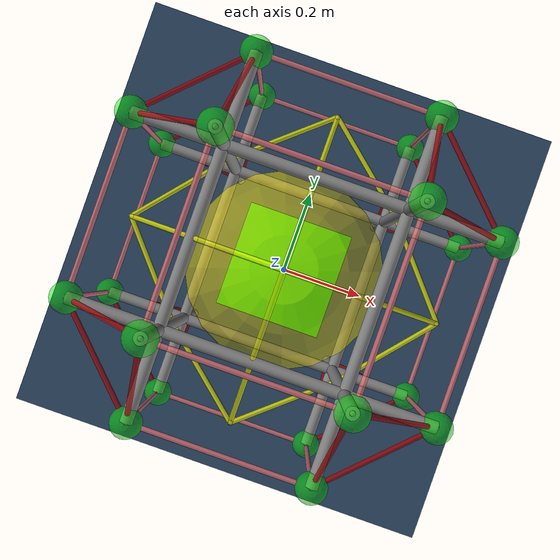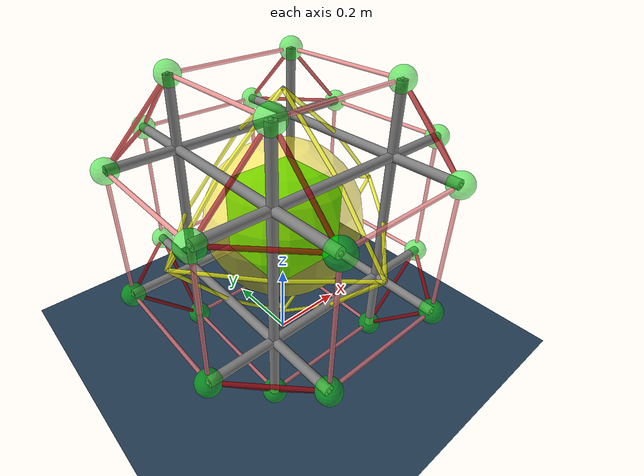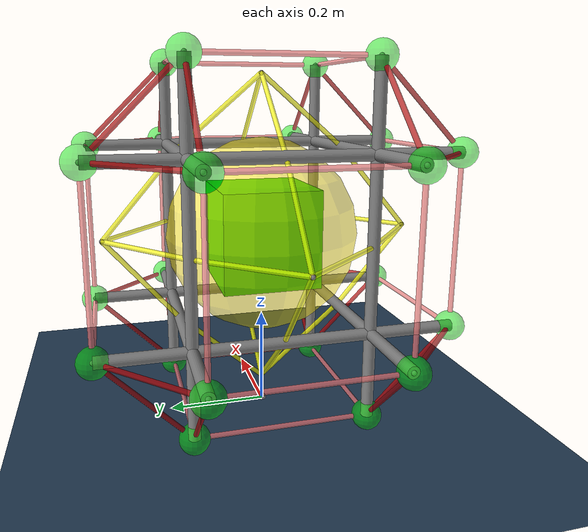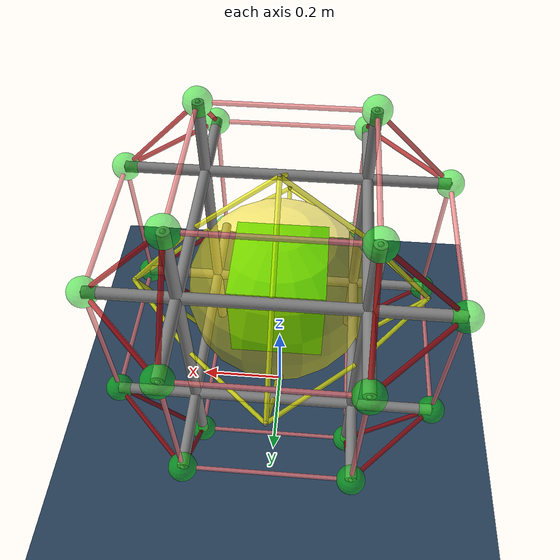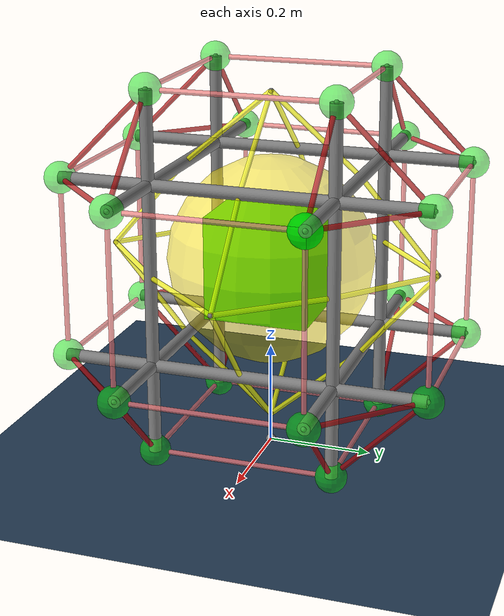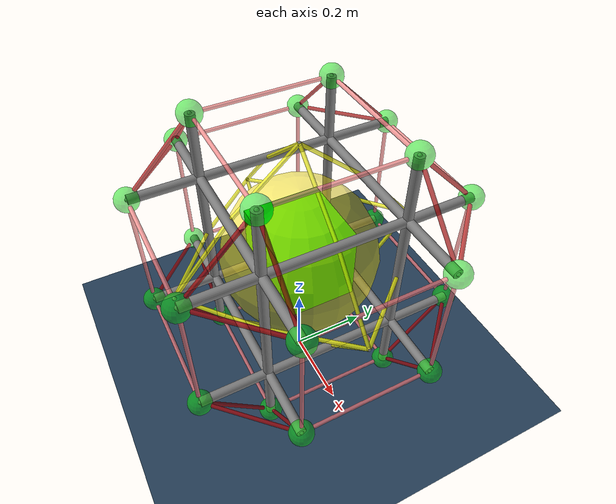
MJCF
<?xml version='1.0' encoding='utf-8'?>
<mujoco model="TT12_environment">
  <compiler autolimits="true" coordinate="local" angle="degree" inertiafromgeom="true" />
  <option timestep="1e-05" gravity="0 0 -10" integrator="Euler">
    <flag override="disable" energy="enable" />
  </option>
  <visual>
    <headlight ambient="0.59999999999999998 0.59999999999999998 0.59999999999999998" diffuse="0.29999999999999999 0.29999999999999999 0.29999999999999999" specular="0.10000000000000001 0.10000000000000001 0.10000000000000001" />
  </visual>
  <default>
    <default class="/">
      <joint type="hinge" damping="0" />
      <geom type="capsule" />
      <site type="sphere" size="0.01" />
      <tendon limited="true" range="0 10" width="0.0050000000000000001" rgba="1 0 0 1" damping="10" />
    </default>
    <default class="tt_model_0/">
      <tendon limited="true" range="0 10" width="0.0050000000000000001" rgba="1 0 0 1" damping="10" />
    </default>
    <default class="tt_model_0/rod0_1/" />
    <default class="tt_model_0/rod2_3/" />
    <default class="tt_model_0/rod4_5/" />
    <default class="tt_model_0/rod6_7/" />
    <default class="tt_model_0/rod8_9/" />
    <default class="tt_model_0/rod10_11/" />
    <default class="tt_model_0/rod12_13/" />
    <default class="tt_model_0/rod14_15/" />
    <default class="tt_model_0/rod16_17/" />
    <default class="tt_model_0/rod18_19/" />
    <default class="tt_model_0/rod20_21/" />
    <default class="tt_model_0/rod22_23/" />
    <default class="tt_model_0/middle_platform/" />
  </default>
  <asset>
    <texture name="skybox" type="skybox" builtin="gradient" rgb1="0.29999999999999999 0.5 0.69999999999999996" rgb2="0 0 0" width="512" height="3072" />
    <texture name="2d" type="2d" builtin="checker" rgb1="0.20000000000000001 0.29999999999999999 0.40000000000000002" rgb2="0.10000000000000001 0.20000000000000001 0.29999999999999999" width="300" height="300" />
    <material name="grid" class="/" texture="2d" texrepeat="5 5" reflectance="0.20000000000000001" />
  </asset>
  <worldbody>
    <geom name="floor" class="/" type="plane" condim="6" priority="1" size="0 0 0.125" material="grid" friction="0.5 0.0050000000000000001 0.0001" solref="-5773.1000000000004 -68.760000000000005" solimp="0.26900000000000002 0.070999999999999994 0.065000000000000002 0.5 2" pos="0 0 0" />
    <light name="light_-2" class="/" pos="-2 -1 3" dir="2 1 -2" />
    <light name="light_2" class="/" pos="2 -1 3" dir="-2 1 -2" />
    <site name="world_site" class="/" pos="0 0 0" />
    <site name="tt_model_0/middle_site_0_1" class="tt_model_0/" rgba="0 0 0 0" pos="0.17499999999999999 0.17499999999999999 0.38" />
    <body pos="0.17499999999999999 0.17499999999999999 0.38" name="tt_model_0/rod0_1/">
      <freejoint name="tt_model_0/rod0_1/" />
      <geom name="tt_model_0/rod0_1/geom0_1" class="tt_model_0/rod0_1/" type="cylinder" size="0.012" mass="0.022499999999999999" fromto="0 0 0.34999999999999998 0 0 -0.34999999999999998" />
      <site name="tt_model_0/rod0_1/node_0" class="tt_model_0/rod0_1/" pos="0 0 0.34999999999999998" />
      <site name="tt_model_0/rod0_1/node_1" class="tt_model_0/rod0_1/" pos="0 0 -0.34999999999999998" />
      <site name="tt_model_0/rod0_1/node_24" class="tt_model_0/rod0_1/" pos="0 0 0" />
      <geom name="tt_model_0/rod0_1/geom_edge_0" class="tt_model_0/rod0_1/" type="sphere" condim="6" size="0.029999999999999999" rgba="0 0.90000000000000002 0 0.5" mass="0.011299999999999999" pos="0 0 0.34999999999999998" />
      <geom name="tt_model_0/rod0_1/geom_edge_1" class="tt_model_0/rod0_1/" type="sphere" condim="6" size="0.029999999999999999" rgba="0 0.90000000000000002 0 0.5" mass="0.011299999999999999" pos="0 0 -0.34999999999999998" />
    </body>
    <site name="tt_model_0/middle_site_2_3" class="tt_model_0/" rgba="0 0 0 0" pos="-0.17499999999999999 0.17499999999999999 0.38" />
    <body pos="-0.17499999999999999 0.17499999999999999 0.38" name="tt_model_0/rod2_3/">
      <freejoint name="tt_model_0/rod2_3/" />
      <geom name="tt_model_0/rod2_3/geom2_3" class="tt_model_0/rod2_3/" type="cylinder" size="0.012" mass="0.022499999999999999" fromto="0 0 0.34999999999999998 0 0 -0.34999999999999998" />
      <site name="tt_model_0/rod2_3/node_2" class="tt_model_0/rod2_3/" pos="0 0 0.34999999999999998" />
      <site name="tt_model_0/rod2_3/node_3" class="tt_model_0/rod2_3/" pos="0 0 -0.34999999999999998" />
      <site name="tt_model_0/rod2_3/node_25" class="tt_model_0/rod2_3/" pos="0 0 0" />
      <geom name="tt_model_0/rod2_3/geom_edge_2" class="tt_model_0/rod2_3/" type="sphere" condim="6" size="0.029999999999999999" rgba="0 0.90000000000000002 0 0.5" mass="0.011299999999999999" pos="0 0 0.34999999999999998" />
      <geom name="tt_model_0/rod2_3/geom_edge_3" class="tt_model_0/rod2_3/" type="sphere" condim="6" size="0.029999999999999999" rgba="0 0.90000000000000002 0 0.5" mass="0.011299999999999999" pos="0 0 -0.34999999999999998" />
    </body>
    <site name="tt_model_0/middle_site_4_5" class="tt_model_0/" rgba="0 0 0 0" pos="-0.17499999999999999 -0.17499999999999999 0.38" />
    <body pos="-0.17499999999999999 -0.17499999999999999 0.38" name="tt_model_0/rod4_5/">
      <freejoint name="tt_model_0/rod4_5/" />
      <geom name="tt_model_0/rod4_5/geom4_5" class="tt_model_0/rod4_5/" type="cylinder" size="0.012" mass="0.022499999999999999" fromto="0 0 0.34999999999999998 0 0 -0.34999999999999998" />
      <site name="tt_model_0/rod4_5/node_4" class="tt_model_0/rod4_5/" pos="0 0 0.34999999999999998" />
      <site name="tt_model_0/rod4_5/node_5" class="tt_model_0/rod4_5/" pos="0 0 -0.34999999999999998" />
      <site name="tt_model_0/rod4_5/node_26" class="tt_model_0/rod4_5/" pos="0 0 0" />
      <geom name="tt_model_0/rod4_5/geom_edge_4" class="tt_model_0/rod4_5/" type="sphere" condim="6" size="0.029999999999999999" rgba="0 0.90000000000000002 0 0.5" mass="0.011299999999999999" pos="0 0 0.34999999999999998" />
      <geom name="tt_model_0/rod4_5/geom_edge_5" class="tt_model_0/rod4_5/" type="sphere" condim="6" size="0.029999999999999999" rgba="0 0.90000000000000002 0 0.5" mass="0.011299999999999999" pos="0 0 -0.34999999999999998" />
    </body>
    <site name="tt_model_0/middle_site_6_7" class="tt_model_0/" rgba="0 0 0 0" pos="0.17499999999999999 -0.17499999999999999 0.38" />
    <body pos="0.17499999999999999 -0.17499999999999999 0.38" name="tt_model_0/rod6_7/">
      <freejoint name="tt_model_0/rod6_7/" />
      <geom name="tt_model_0/rod6_7/geom6_7" class="tt_model_0/rod6_7/" type="cylinder" size="0.012" mass="0.022499999999999999" fromto="0 0 0.34999999999999998 0 0 -0.34999999999999998" />
      <site name="tt_model_0/rod6_7/node_6" class="tt_model_0/rod6_7/" pos="0 0 0.34999999999999998" />
      <site name="tt_model_0/rod6_7/node_7" class="tt_model_0/rod6_7/" pos="0 0 -0.34999999999999998" />
      <site name="tt_model_0/rod6_7/node_27" class="tt_model_0/rod6_7/" pos="0 0 0" />
      <geom name="tt_model_0/rod6_7/geom_edge_6" class="tt_model_0/rod6_7/" type="sphere" condim="6" size="0.029999999999999999" rgba="0 0.90000000000000002 0 0.5" mass="0.011299999999999999" pos="0 0 0.34999999999999998" />
      <geom name="tt_model_0/rod6_7/geom_edge_7" class="tt_model_0/rod6_7/" type="sphere" condim="6" size="0.029999999999999999" rgba="0 0.90000000000000002 0 0.5" mass="0.011299999999999999" pos="0 0 -0.34999999999999998" />
    </body>
    <site name="tt_model_0/middle_site_8_9" class="tt_model_0/" rgba="0 0 0 0" pos="0.17499999999999999 0 0.55499999999999994" />
    <body pos="0.17499999999999999 0 0.55499999999999994" name="tt_model_0/rod8_9/">
      <freejoint name="tt_model_0/rod8_9/" />
      <geom name="tt_model_0/rod8_9/geom8_9" class="tt_model_0/rod8_9/" type="cylinder" size="0.012" mass="0.022499999999999999" fromto="0 0.34999999999999998 0 0 -0.34999999999999998 0" />
      <site name="tt_model_0/rod8_9/node_8" class="tt_model_0/rod8_9/" pos="0 0.34999999999999998 0" />
      <site name="tt_model_0/rod8_9/node_9" class="tt_model_0/rod8_9/" pos="0 -0.34999999999999998 0" />
      <site name="tt_model_0/rod8_9/node_28" class="tt_model_0/rod8_9/" pos="0 0 0" />
      <geom name="tt_model_0/rod8_9/geom_edge_8" class="tt_model_0/rod8_9/" type="sphere" condim="6" size="0.029999999999999999" rgba="0 0.90000000000000002 0 0.5" mass="0.011299999999999999" pos="0 0.34999999999999998 0" />
      <geom name="tt_model_0/rod8_9/geom_edge_9" class="tt_model_0/rod8_9/" type="sphere" condim="6" size="0.029999999999999999" rgba="0 0.90000000000000002 0 0.5" mass="0.011299999999999999" pos="0 -0.34999999999999998 0" />
    </body>
    <site name="tt_model_0/middle_site_10_11" class="tt_model_0/" rgba="0 0 0 0" pos="0.17499999999999999 0 0.20500000000000002" />
    <body pos="0.17499999999999999 0 0.20500000000000002" name="tt_model_0/rod10_11/">
      <freejoint name="tt_model_0/rod10_11/" />
      <geom name="tt_model_0/rod10_11/geom10_11" class="tt_model_0/rod10_11/" type="cylinder" size="0.012" mass="0.022499999999999999" fromto="0 0.34999999999999998 0 0 -0.34999999999999998 0" />
      <site name="tt_model_0/rod10_11/node_10" class="tt_model_0/rod10_11/" pos="0 0.34999999999999998 0" />
      <site name="tt_model_0/rod10_11/node_11" class="tt_model_0/rod10_11/" pos="0 -0.34999999999999998 0" />
      <site name="tt_model_0/rod10_11/node_29" class="tt_model_0/rod10_11/" pos="0 0 0" />
      <geom name="tt_model_0/rod10_11/geom_edge_10" class="tt_model_0/rod10_11/" type="sphere" condim="6" size="0.029999999999999999" rgba="0 0.90000000000000002 0 0.5" mass="0.011299999999999999" pos="0 0.34999999999999998 0" />
      <geom name="tt_model_0/rod10_11/geom_edge_11" class="tt_model_0/rod10_11/" type="sphere" condim="6" size="0.029999999999999999" rgba="0 0.90000000000000002 0 0.5" mass="0.011299999999999999" pos="0 -0.34999999999999998 0" />
    </body>
    <site name="tt_model_0/middle_site_12_13" class="tt_model_0/" rgba="0 0 0 0" pos="-0.17499999999999999 0 0.20500000000000002" />
    <body pos="-0.17499999999999999 0 0.20500000000000002" name="tt_model_0/rod12_13/">
      <freejoint name="tt_model_0/rod12_13/" />
      <geom name="tt_model_0/rod12_13/geom12_13" class="tt_model_0/rod12_13/" type="cylinder" size="0.012" mass="0.022499999999999999" fromto="0 0.34999999999999998 0 0 -0.34999999999999998 0" />
      <site name="tt_model_0/rod12_13/node_12" class="tt_model_0/rod12_13/" pos="0 0.34999999999999998 0" />
      <site name="tt_model_0/rod12_13/node_13" class="tt_model_0/rod12_13/" pos="0 -0.34999999999999998 0" />
      <site name="tt_model_0/rod12_13/node_30" class="tt_model_0/rod12_13/" pos="0 0 0" />
      <geom name="tt_model_0/rod12_13/geom_edge_12" class="tt_model_0/rod12_13/" type="sphere" condim="6" size="0.029999999999999999" rgba="0 0.90000000000000002 0 0.5" mass="0.011299999999999999" pos="0 0.34999999999999998 0" />
      <geom name="tt_model_0/rod12_13/geom_edge_13" class="tt_model_0/rod12_13/" type="sphere" condim="6" size="0.029999999999999999" rgba="0 0.90000000000000002 0 0.5" mass="0.011299999999999999" pos="0 -0.34999999999999998 0" />
    </body>
    <site name="tt_model_0/middle_site_14_15" class="tt_model_0/" rgba="0 0 0 0" pos="-0.17499999999999999 0 0.55499999999999994" />
    <body pos="-0.17499999999999999 0 0.55499999999999994" name="tt_model_0/rod14_15/">
      <freejoint name="tt_model_0/rod14_15/" />
      <geom name="tt_model_0/rod14_15/geom14_15" class="tt_model_0/rod14_15/" type="cylinder" size="0.012" mass="0.022499999999999999" fromto="0 0.34999999999999998 0 0 -0.34999999999999998 0" />
      <site name="tt_model_0/rod14_15/node_14" class="tt_model_0/rod14_15/" pos="0 0.34999999999999998 0" />
      <site name="tt_model_0/rod14_15/node_15" class="tt_model_0/rod14_15/" pos="0 -0.34999999999999998 0" />
      <site name="tt_model_0/rod14_15/node_31" class="tt_model_0/rod14_15/" pos="0 0 0" />
      <geom name="tt_model_0/rod14_15/geom_edge_14" class="tt_model_0/rod14_15/" type="sphere" condim="6" size="0.029999999999999999" rgba="0 0.90000000000000002 0 0.5" mass="0.011299999999999999" pos="0 0.34999999999999998 0" />
      <geom name="tt_model_0/rod14_15/geom_edge_15" class="tt_model_0/rod14_15/" type="sphere" condim="6" size="0.029999999999999999" rgba="0 0.90000000000000002 0 0.5" mass="0.011299999999999999" pos="0 -0.34999999999999998 0" />
    </body>
    <site name="tt_model_0/middle_site_16_17" class="tt_model_0/" rgba="0 0 0 0" pos="0 0.17499999999999999 0.55499999999999994" />
    <body pos="0 0.17499999999999999 0.55499999999999994" name="tt_model_0/rod16_17/">
      <freejoint name="tt_model_0/rod16_17/" />
      <geom name="tt_model_0/rod16_17/geom16_17" class="tt_model_0/rod16_17/" type="cylinder" size="0.012" mass="0.022499999999999999" fromto="0.34999999999999998 0 0 -0.34999999999999998 0 0" />
      <site name="tt_model_0/rod16_17/node_16" class="tt_model_0/rod16_17/" pos="0.34999999999999998 0 0" />
      <site name="tt_model_0/rod16_17/node_17" class="tt_model_0/rod16_17/" pos="-0.34999999999999998 0 0" />
      <site name="tt_model_0/rod16_17/node_32" class="tt_model_0/rod16_17/" pos="0 0 0" />
      <geom name="tt_model_0/rod16_17/geom_edge_16" class="tt_model_0/rod16_17/" type="sphere" condim="6" size="0.029999999999999999" rgba="0 0.90000000000000002 0 0.5" mass="0.011299999999999999" pos="0.34999999999999998 0 0" />
      <geom name="tt_model_0/rod16_17/geom_edge_17" class="tt_model_0/rod16_17/" type="sphere" condim="6" size="0.029999999999999999" rgba="0 0.90000000000000002 0 0.5" mass="0.011299999999999999" pos="-0.34999999999999998 0 0" />
    </body>
    <site name="tt_model_0/middle_site_18_19" class="tt_model_0/" rgba="0 0 0 0" pos="0 -0.17499999999999999 0.55499999999999994" />
    <body pos="0 -0.17499999999999999 0.55499999999999994" name="tt_model_0/rod18_19/">
      <freejoint name="tt_model_0/rod18_19/" />
      <geom name="tt_model_0/rod18_19/geom18_19" class="tt_model_0/rod18_19/" type="cylinder" size="0.012" mass="0.022499999999999999" fromto="0.34999999999999998 0 0 -0.34999999999999998 0 0" />
      <site name="tt_model_0/rod18_19/node_18" class="tt_model_0/rod18_19/" pos="0.34999999999999998 0 0" />
      <site name="tt_model_0/rod18_19/node_19" class="tt_model_0/rod18_19/" pos="-0.34999999999999998 0 0" />
      <site name="tt_model_0/rod18_19/node_33" class="tt_model_0/rod18_19/" pos="0 0 0" />
      <geom name="tt_model_0/rod18_19/geom_edge_18" class="tt_model_0/rod18_19/" type="sphere" condim="6" size="0.029999999999999999" rgba="0 0.90000000000000002 0 0.5" mass="0.011299999999999999" pos="0.34999999999999998 0 0" />
      <geom name="tt_model_0/rod18_19/geom_edge_19" class="tt_model_0/rod18_19/" type="sphere" condim="6" size="0.029999999999999999" rgba="0 0.90000000000000002 0 0.5" mass="0.011299999999999999" pos="-0.34999999999999998 0 0" />
    </body>
    <site name="tt_model_0/middle_site_20_21" class="tt_model_0/" rgba="0 0 0 0" pos="0 -0.17499999999999999 0.20500000000000002" />
    <body pos="0 -0.17499999999999999 0.20500000000000002" name="tt_model_0/rod20_21/">
      <freejoint name="tt_model_0/rod20_21/" />
      <geom name="tt_model_0/rod20_21/geom20_21" class="tt_model_0/rod20_21/" type="cylinder" size="0.012" mass="0.022499999999999999" fromto="0.34999999999999998 0 0 -0.34999999999999998 0 0" />
      <site name="tt_model_0/rod20_21/node_20" class="tt_model_0/rod20_21/" pos="0.34999999999999998 0 0" />
      <site name="tt_model_0/rod20_21/node_21" class="tt_model_0/rod20_21/" pos="-0.34999999999999998 0 0" />
      <site name="tt_model_0/rod20_21/node_34" class="tt_model_0/rod20_21/" pos="0 0 0" />
      <geom name="tt_model_0/rod20_21/geom_edge_20" class="tt_model_0/rod20_21/" type="sphere" condim="6" size="0.029999999999999999" rgba="0 0.90000000000000002 0 0.5" mass="0.011299999999999999" pos="0.34999999999999998 0 0" />
      <geom name="tt_model_0/rod20_21/geom_edge_21" class="tt_model_0/rod20_21/" type="sphere" condim="6" size="0.029999999999999999" rgba="0 0.90000000000000002 0 0.5" mass="0.011299999999999999" pos="-0.34999999999999998 0 0" />
    </body>
    <site name="tt_model_0/middle_site_22_23" class="tt_model_0/" rgba="0 0 0 0" pos="0 0.17499999999999999 0.20500000000000002" />
    <body pos="0 0.17499999999999999 0.20500000000000002" name="tt_model_0/rod22_23/">
      <freejoint name="tt_model_0/rod22_23/" />
      <geom name="tt_model_0/rod22_23/geom22_23" class="tt_model_0/rod22_23/" type="cylinder" size="0.012" mass="0.022499999999999999" fromto="0.34999999999999998 0 0 -0.34999999999999998 0 0" />
      <site name="tt_model_0/rod22_23/node_22" class="tt_model_0/rod22_23/" pos="0.34999999999999998 0 0" />
      <site name="tt_model_0/rod22_23/node_23" class="tt_model_0/rod22_23/" pos="-0.34999999999999998 0 0" />
      <site name="tt_model_0/rod22_23/node_35" class="tt_model_0/rod22_23/" pos="0 0 0" />
      <geom name="tt_model_0/rod22_23/geom_edge_22" class="tt_model_0/rod22_23/" type="sphere" condim="6" size="0.029999999999999999" rgba="0 0.90000000000000002 0 0.5" mass="0.011299999999999999" pos="0.34999999999999998 0 0" />
      <geom name="tt_model_0/rod22_23/geom_edge_23" class="tt_model_0/rod22_23/" type="sphere" condim="6" size="0.029999999999999999" rgba="0 0.90000000000000002 0 0.5" mass="0.011299999999999999" pos="-0.34999999999999998 0 0" />
    </body>
    <site name="tt_model_0/middle_element_site" class="tt_model_0/" rgba="0 0 0 0" pos="0 0 0.38" />
    <body pos="0 0 0.38" name="tt_model_0/middle_platform/">
      <freejoint name="tt_model_0/middle_platform/" />
      <inertial pos="0 0 0" mass="0.69999999999999996" diaginertia="0.02 0.02 0.02" />
      <site name="tt_model_0/middle_platform/node_41" class="tt_model_0/middle_platform/" pos="0 0 0.32500000000000007" />
      <site name="tt_model_0/middle_platform/node_38" class="tt_model_0/middle_platform/" pos="-0.32500000000000001 0 0" />
      <site name="tt_model_0/middle_platform/node_40" class="tt_model_0/middle_platform/" pos="0 -0.32500000000000001 0" />
      <site name="tt_model_0/middle_platform/node_39" class="tt_model_0/middle_platform/" pos="0 0.32500000000000001 0" />
      <site name="tt_model_0/middle_platform/node_37" class="tt_model_0/middle_platform/" pos="0.32500000000000001 0 0" />
      <site name="tt_model_0/middle_platform/node_42" class="tt_model_0/middle_platform/" pos="0 0 -0.32500000000000001" />
      <site name="tt_model_0/middle_platform/outside_site" class="tt_model_0/middle_platform/" rgba="1 0.90000000000000002 0 0.5" size="0.20000000000000001" pos="0 0 0" />
      <body name="tt_model_0/middle_platform/inside_ball" pos="0 0 0">
        <inertial pos="0 0 0" mass="6.5999999999999996" diaginertia="0.12 0.12 0.12" />
        <joint name="tt_model_0/middle_platform/x_control" class="tt_model_0/middle_platform/" type="hinge" axis="1 0 0" />
        <joint name="tt_model_0/middle_platform/y_control" class="tt_model_0/middle_platform/" type="hinge" axis="0 1 0" />
        <joint name="tt_model_0/middle_platform/z_control" class="tt_model_0/middle_platform/" type="hinge" axis="0 0 1" />
        <site name="tt_model_0/middle_platform/inside_site" class="tt_model_0/middle_platform/" type="box" rgba="0 0.90000000000000002 0 1" size="0.10000000000000001 0.10000000000000001 0.10000000000000001" pos="0 0 0" />
      </body>
    </body>
  </worldbody>
  <contact>
    <exclude name="tt_model_0/exclude_rod0_1_rod2_3" body1="tt_model_0/rod0_1/" body2="tt_model_0/rod2_3/" />
    <exclude name="tt_model_0/exclude_rod0_1_rod4_5" body1="tt_model_0/rod0_1/" body2="tt_model_0/rod4_5/" />
    <exclude name="tt_model_0/exclude_rod0_1_rod6_7" body1="tt_model_0/rod0_1/" body2="tt_model_0/rod6_7/" />
    <exclude name="tt_model_0/exclude_rod0_1_rod8_9" body1="tt_model_0/rod0_1/" body2="tt_model_0/rod8_9/" />
    <exclude name="tt_model_0/exclude_rod0_1_rod10_11" body1="tt_model_0/rod0_1/" body2="tt_model_0/rod10_11/" />
    <exclude name="tt_model_0/exclude_rod0_1_rod12_13" body1="tt_model_0/rod0_1/" body2="tt_model_0/rod12_13/" />
    <exclude name="tt_model_0/exclude_rod0_1_rod14_15" body1="tt_model_0/rod0_1/" body2="tt_model_0/rod14_15/" />
    <exclude name="tt_model_0/exclude_rod0_1_rod16_17" body1="tt_model_0/rod0_1/" body2="tt_model_0/rod16_17/" />
    <exclude name="tt_model_0/exclude_rod0_1_rod18_19" body1="tt_model_0/rod0_1/" body2="tt_model_0/rod18_19/" />
    <exclude name="tt_model_0/exclude_rod0_1_rod20_21" body1="tt_model_0/rod0_1/" body2="tt_model_0/rod20_21/" />
    <exclude name="tt_model_0/exclude_rod0_1_rod22_23" body1="tt_model_0/rod0_1/" body2="tt_model_0/rod22_23/" />
    <exclude name="tt_model_0/exclude_rod2_3_rod4_5" body1="tt_model_0/rod2_3/" body2="tt_model_0/rod4_5/" />
    <exclude name="tt_model_0/exclude_rod2_3_rod6_7" body1="tt_model_0/rod2_3/" body2="tt_model_0/rod6_7/" />
    <exclude name="tt_model_0/exclude_rod2_3_rod8_9" body1="tt_model_0/rod2_3/" body2="tt_model_0/rod8_9/" />
    <exclude name="tt_model_0/exclude_rod2_3_rod10_11" body1="tt_model_0/rod2_3/" body2="tt_model_0/rod10_11/" />
    <exclude name="tt_model_0/exclude_rod2_3_rod12_13" body1="tt_model_0/rod2_3/" body2="tt_model_0/rod12_13/" />
    <exclude name="tt_model_0/exclude_rod2_3_rod14_15" body1="tt_model_0/rod2_3/" body2="tt_model_0/rod14_15/" />
    <exclude name="tt_model_0/exclude_rod2_3_rod16_17" body1="tt_model_0/rod2_3/" body2="tt_model_0/rod16_17/" />
    <exclude name="tt_model_0/exclude_rod2_3_rod18_19" body1="tt_model_0/rod2_3/" body2="tt_model_0/rod18_19/" />
    <exclude name="tt_model_0/exclude_rod2_3_rod20_21" body1="tt_model_0/rod2_3/" body2="tt_model_0/rod20_21/" />
    <exclude name="tt_model_0/exclude_rod2_3_rod22_23" body1="tt_model_0/rod2_3/" body2="tt_model_0/rod22_23/" />
    <exclude name="tt_model_0/exclude_rod4_5_rod6_7" body1="tt_model_0/rod4_5/" body2="tt_model_0/rod6_7/" />
    <exclude name="tt_model_0/exclude_rod4_5_rod8_9" body1="tt_model_0/rod4_5/" body2="tt_model_0/rod8_9/" />
    <exclude name="tt_model_0/exclude_rod4_5_rod10_11" body1="tt_model_0/rod4_5/" body2="tt_model_0/rod10_11/" />
    <exclude name="tt_model_0/exclude_rod4_5_rod12_13" body1="tt_model_0/rod4_5/" body2="tt_model_0/rod12_13/" />
    <exclude name="tt_model_0/exclude_rod4_5_rod14_15" body1="tt_model_0/rod4_5/" body2="tt_model_0/rod14_15/" />
    <exclude name="tt_model_0/exclude_rod4_5_rod16_17" body1="tt_model_0/rod4_5/" body2="tt_model_0/rod16_17/" />
    <exclude name="tt_model_0/exclude_rod4_5_rod18_19" body1="tt_model_0/rod4_5/" body2="tt_model_0/rod18_19/" />
    <exclude name="tt_model_0/exclude_rod4_5_rod20_21" body1="tt_model_0/rod4_5/" body2="tt_model_0/rod20_21/" />
    <exclude name="tt_model_0/exclude_rod4_5_rod22_23" body1="tt_model_0/rod4_5/" body2="tt_model_0/rod22_23/" />
    <exclude name="tt_model_0/exclude_rod6_7_rod8_9" body1="tt_model_0/rod6_7/" body2="tt_model_0/rod8_9/" />
    <exclude name="tt_model_0/exclude_rod6_7_rod10_11" body1="tt_model_0/rod6_7/" body2="tt_model_0/rod10_11/" />
    <exclude name="tt_model_0/exclude_rod6_7_rod12_13" body1="tt_model_0/rod6_7/" body2="tt_model_0/rod12_13/" />
    <exclude name="tt_model_0/exclude_rod6_7_rod14_15" body1="tt_model_0/rod6_7/" body2="tt_model_0/rod14_15/" />
    <exclude name="tt_model_0/exclude_rod6_7_rod16_17" body1="tt_model_0/rod6_7/" body2="tt_model_0/rod16_17/" />
    <exclude name="tt_model_0/exclude_rod6_7_rod18_19" body1="tt_model_0/rod6_7/" body2="tt_model_0/rod18_19/" />
    <exclude name="tt_model_0/exclude_rod6_7_rod20_21" body1="tt_model_0/rod6_7/" body2="tt_model_0/rod20_21/" />
    <exclude name="tt_model_0/exclude_rod6_7_rod22_23" body1="tt_model_0/rod6_7/" body2="tt_model_0/rod22_23/" />
    <exclude name="tt_model_0/exclude_rod8_9_rod10_11" body1="tt_model_0/rod8_9/" body2="tt_model_0/rod10_11/" />
    <exclude name="tt_model_0/exclude_rod8_9_rod12_13" body1="tt_model_0/rod8_9/" body2="tt_model_0/rod12_13/" />
    <exclude name="tt_model_0/exclude_rod8_9_rod14_15" body1="tt_model_0/rod8_9/" body2="tt_model_0/rod14_15/" />
    <exclude name="tt_model_0/exclude_rod8_9_rod16_17" body1="tt_model_0/rod8_9/" body2="tt_model_0/rod16_17/" />
    <exclude name="tt_model_0/exclude_rod8_9_rod18_19" body1="tt_model_0/rod8_9/" body2="tt_model_0/rod18_19/" />
    <exclude name="tt_model_0/exclude_rod8_9_rod20_21" body1="tt_model_0/rod8_9/" body2="tt_model_0/rod20_21/" />
    <exclude name="tt_model_0/exclude_rod8_9_rod22_23" body1="tt_model_0/rod8_9/" body2="tt_model_0/rod22_23/" />
    <exclude name="tt_model_0/exclude_rod10_11_rod12_13" body1="tt_model_0/rod10_11/" body2="tt_model_0/rod12_13/" />
    <exclude name="tt_model_0/exclude_rod10_11_rod14_15" body1="tt_model_0/rod10_11/" body2="tt_model_0/rod14_15/" />
    <exclude name="tt_model_0/exclude_rod10_11_rod16_17" body1="tt_model_0/rod10_11/" body2="tt_model_0/rod16_17/" />
    <exclude name="tt_model_0/exclude_rod10_11_rod18_19" body1="tt_model_0/rod10_11/" body2="tt_model_0/rod18_19/" />
    <exclude name="tt_model_0/exclude_rod10_11_rod20_21" body1="tt_model_0/rod10_11/" body2="tt_model_0/rod20_21/" />
    <exclude name="tt_model_0/exclude_rod10_11_rod22_23" body1="tt_model_0/rod10_11/" body2="tt_model_0/rod22_23/" />
    <exclude name="tt_model_0/exclude_rod12_13_rod14_15" body1="tt_model_0/rod12_13/" body2="tt_model_0/rod14_15/" />
    <exclude name="tt_model_0/exclude_rod12_13_rod16_17" body1="tt_model_0/rod12_13/" body2="tt_model_0/rod16_17/" />
    <exclude name="tt_model_0/exclude_rod12_13_rod18_19" body1="tt_model_0/rod12_13/" body2="tt_model_0/rod18_19/" />
    <exclude name="tt_model_0/exclude_rod12_13_rod20_21" body1="tt_model_0/rod12_13/" body2="tt_model_0/rod20_21/" />
    <exclude name="tt_model_0/exclude_rod12_13_rod22_23" body1="tt_model_0/rod12_13/" body2="tt_model_0/rod22_23/" />
    <exclude name="tt_model_0/exclude_rod14_15_rod16_17" body1="tt_model_0/rod14_15/" body2="tt_model_0/rod16_17/" />
    <exclude name="tt_model_0/exclude_rod14_15_rod18_19" body1="tt_model_0/rod14_15/" body2="tt_model_0/rod18_19/" />
    <exclude name="tt_model_0/exclude_rod14_15_rod20_21" body1="tt_model_0/rod14_15/" body2="tt_model_0/rod20_21/" />
    <exclude name="tt_model_0/exclude_rod14_15_rod22_23" body1="tt_model_0/rod14_15/" body2="tt_model_0/rod22_23/" />
    <exclude name="tt_model_0/exclude_rod16_17_rod18_19" body1="tt_model_0/rod16_17/" body2="tt_model_0/rod18_19/" />
    <exclude name="tt_model_0/exclude_rod16_17_rod20_21" body1="tt_model_0/rod16_17/" body2="tt_model_0/rod20_21/" />
    <exclude name="tt_model_0/exclude_rod16_17_rod22_23" body1="tt_model_0/rod16_17/" body2="tt_model_0/rod22_23/" />
    <exclude name="tt_model_0/exclude_rod18_19_rod20_21" body1="tt_model_0/rod18_19/" body2="tt_model_0/rod20_21/" />
    <exclude name="tt_model_0/exclude_rod18_19_rod22_23" body1="tt_model_0/rod18_19/" body2="tt_model_0/rod22_23/" />
    <exclude name="tt_model_0/exclude_rod20_21_rod22_23" body1="tt_model_0/rod20_21/" body2="tt_model_0/rod22_23/" />
  </contact>
  <tendon>
    <spatial name="tt_model_0/td0_2" class="tt_model_0/" rgba="1 0.5 0.5 0.69999999999999996" springlength="0.22029831387808038" stiffness="771">
      <site site="tt_model_0/rod0_1/node_0" />
      <site site="tt_model_0/rod2_3/node_2" />
    </spatial>
    <spatial name="tt_model_0/td2_4" class="tt_model_0/" rgba="1 0.5 0.5 0.69999999999999996" springlength="0.22029831387808038" stiffness="771">
      <site site="tt_model_0/rod2_3/node_2" />
      <site site="tt_model_0/rod4_5/node_4" />
    </spatial>
    <spatial name="tt_model_0/td4_6" class="tt_model_0/" rgba="1 0.5 0.5 0.69999999999999996" springlength="0.22029831387808038" stiffness="771">
      <site site="tt_model_0/rod4_5/node_4" />
      <site site="tt_model_0/rod6_7/node_6" />
    </spatial>
    <spatial name="tt_model_0/td6_0" class="tt_model_0/" rgba="1 0.5 0.5 0.69999999999999996" springlength="0.22029831387808038" stiffness="771">
      <site site="tt_model_0/rod6_7/node_6" />
      <site site="tt_model_0/rod0_1/node_0" />
    </spatial>
    <spatial name="tt_model_0/td1_3" class="tt_model_0/" rgba="1 0.5 0.5 0.69999999999999996" springlength="0.22029831387808038" stiffness="771">
      <site site="tt_model_0/rod0_1/node_1" />
      <site site="tt_model_0/rod2_3/node_3" />
    </spatial>
    <spatial name="tt_model_0/td3_5" class="tt_model_0/" rgba="1 0.5 0.5 0.69999999999999996" springlength="0.22029831387808038" stiffness="771">
      <site site="tt_model_0/rod2_3/node_3" />
      <site site="tt_model_0/rod4_5/node_5" />
    </spatial>
    <spatial name="tt_model_0/td5_7" class="tt_model_0/" rgba="1 0.5 0.5 0.69999999999999996" springlength="0.22029831387808038" stiffness="771">
      <site site="tt_model_0/rod4_5/node_5" />
      <site site="tt_model_0/rod6_7/node_7" />
    </spatial>
    <spatial name="tt_model_0/td7_1" class="tt_model_0/" rgba="1 0.5 0.5 0.69999999999999996" springlength="0.22029831387808038" stiffness="771">
      <site site="tt_model_0/rod6_7/node_7" />
      <site site="tt_model_0/rod0_1/node_1" />
    </spatial>
    <spatial name="tt_model_0/td8_10" class="tt_model_0/" rgba="1 0.5 0.5 0.69999999999999996" springlength="0.22029831387808038" stiffness="771">
      <site site="tt_model_0/rod8_9/node_8" />
      <site site="tt_model_0/rod10_11/node_10" />
    </spatial>
    <spatial name="tt_model_0/td10_12" class="tt_model_0/" rgba="1 0.5 0.5 0.69999999999999996" springlength="0.22029831387808038" stiffness="771">
      <site site="tt_model_0/rod10_11/node_10" />
      <site site="tt_model_0/rod12_13/node_12" />
    </spatial>
    <spatial name="tt_model_0/td12_14" class="tt_model_0/" rgba="1 0.5 0.5 0.69999999999999996" springlength="0.22029831387808038" stiffness="771">
      <site site="tt_model_0/rod12_13/node_12" />
      <site site="tt_model_0/rod14_15/node_14" />
    </spatial>
    <spatial name="tt_model_0/td14_8" class="tt_model_0/" rgba="1 0.5 0.5 0.69999999999999996" springlength="0.22029831387808038" stiffness="771">
      <site site="tt_model_0/rod14_15/node_14" />
      <site site="tt_model_0/rod8_9/node_8" />
    </spatial>
    <spatial name="tt_model_0/td9_11" class="tt_model_0/" rgba="1 0.5 0.5 0.69999999999999996" springlength="0.22029831387808038" stiffness="771">
      <site site="tt_model_0/rod8_9/node_9" />
      <site site="tt_model_0/rod10_11/node_11" />
    </spatial>
    <spatial name="tt_model_0/td11_13" class="tt_model_0/" rgba="1 0.5 0.5 0.69999999999999996" springlength="0.22029831387808038" stiffness="771">
      <site site="tt_model_0/rod10_11/node_11" />
      <site site="tt_model_0/rod12_13/node_13" />
    </spatial>
    <spatial name="tt_model_0/td13_15" class="tt_model_0/" rgba="1 0.5 0.5 0.69999999999999996" springlength="0.22029831387808038" stiffness="771">
      <site site="tt_model_0/rod12_13/node_13" />
      <site site="tt_model_0/rod14_15/node_15" />
    </spatial>
    <spatial name="tt_model_0/td15_9" class="tt_model_0/" rgba="1 0.5 0.5 0.69999999999999996" springlength="0.22029831387808038" stiffness="771">
      <site site="tt_model_0/rod14_15/node_15" />
      <site site="tt_model_0/rod8_9/node_9" />
    </spatial>
    <spatial name="tt_model_0/td16_18" class="tt_model_0/" rgba="1 0.5 0.5 0.69999999999999996" springlength="0.22029831387808038" stiffness="771">
      <site site="tt_model_0/rod16_17/node_16" />
      <site site="tt_model_0/rod18_19/node_18" />
    </spatial>
    <spatial name="tt_model_0/td18_20" class="tt_model_0/" rgba="1 0.5 0.5 0.69999999999999996" springlength="0.22029831387808038" stiffness="771">
      <site site="tt_model_0/rod18_19/node_18" />
      <site site="tt_model_0/rod20_21/node_20" />
    </spatial>
    <spatial name="tt_model_0/td20_22" class="tt_model_0/" rgba="1 0.5 0.5 0.69999999999999996" springlength="0.22029831387808038" stiffness="771">
      <site site="tt_model_0/rod20_21/node_20" />
      <site site="tt_model_0/rod22_23/node_22" />
    </spatial>
    <spatial name="tt_model_0/td22_16" class="tt_model_0/" rgba="1 0.5 0.5 0.69999999999999996" springlength="0.22029831387808038" stiffness="771">
      <site site="tt_model_0/rod22_23/node_22" />
      <site site="tt_model_0/rod16_17/node_16" />
    </spatial>
    <spatial name="tt_model_0/td17_19" class="tt_model_0/" rgba="1 0.5 0.5 0.69999999999999996" springlength="0.22029831387808038" stiffness="771">
      <site site="tt_model_0/rod16_17/node_17" />
      <site site="tt_model_0/rod18_19/node_19" />
    </spatial>
    <spatial name="tt_model_0/td19_21" class="tt_model_0/" rgba="1 0.5 0.5 0.69999999999999996" springlength="0.22029831387808038" stiffness="771">
      <site site="tt_model_0/rod18_19/node_19" />
      <site site="tt_model_0/rod20_21/node_21" />
    </spatial>
    <spatial name="tt_model_0/td21_23" class="tt_model_0/" rgba="1 0.5 0.5 0.69999999999999996" springlength="0.22029831387808038" stiffness="771">
      <site site="tt_model_0/rod20_21/node_21" />
      <site site="tt_model_0/rod22_23/node_23" />
    </spatial>
    <spatial name="tt_model_0/td23_17" class="tt_model_0/" rgba="1 0.5 0.5 0.69999999999999996" springlength="0.22029831387808038" stiffness="771">
      <site site="tt_model_0/rod22_23/node_23" />
      <site site="tt_model_0/rod16_17/node_17" />
    </spatial>
    <spatial name="tt_model_0/td0_16" class="tt_model_0/" rgba="0.69999999999999996 0 0 0.69999999999999996" springlength="0.10248737341529165" stiffness="2000">
      <site site="tt_model_0/rod0_1/node_0" />
      <site site="tt_model_0/rod16_17/node_16" />
    </spatial>
    <spatial name="tt_model_0/td2_17" class="tt_model_0/" rgba="0.69999999999999996 0 0 0.69999999999999996" springlength="0.10248737341529165" stiffness="2000">
      <site site="tt_model_0/rod2_3/node_2" />
      <site site="tt_model_0/rod16_17/node_17" />
    </spatial>
    <spatial name="tt_model_0/td4_19" class="tt_model_0/" rgba="0.69999999999999996 0 0 0.69999999999999996" springlength="0.10248737341529165" stiffness="2000">
      <site site="tt_model_0/rod4_5/node_4" />
      <site site="tt_model_0/rod18_19/node_19" />
    </spatial>
    <spatial name="tt_model_0/td6_18" class="tt_model_0/" rgba="0.69999999999999996 0 0 0.69999999999999996" springlength="0.10248737341529165" stiffness="2000">
      <site site="tt_model_0/rod6_7/node_6" />
      <site site="tt_model_0/rod18_19/node_18" />
    </spatial>
    <spatial name="tt_model_0/td1_22" class="tt_model_0/" rgba="0.69999999999999996 0 0 0.69999999999999996" springlength="0.10248737341529165" stiffness="2000">
      <site site="tt_model_0/rod0_1/node_1" />
      <site site="tt_model_0/rod22_23/node_22" />
    </spatial>
    <spatial name="tt_model_0/td3_23" class="tt_model_0/" rgba="0.69999999999999996 0 0 0.69999999999999996" springlength="0.10248737341529165" stiffness="2000">
      <site site="tt_model_0/rod2_3/node_3" />
      <site site="tt_model_0/rod22_23/node_23" />
    </spatial>
    <spatial name="tt_model_0/td5_21" class="tt_model_0/" rgba="0.69999999999999996 0 0 0.69999999999999996" springlength="0.10248737341529165" stiffness="2000">
      <site site="tt_model_0/rod4_5/node_5" />
      <site site="tt_model_0/rod20_21/node_21" />
    </spatial>
    <spatial name="tt_model_0/td7_20" class="tt_model_0/" rgba="0.69999999999999996 0 0 0.69999999999999996" springlength="0.10248737341529165" stiffness="2000">
      <site site="tt_model_0/rod6_7/node_7" />
      <site site="tt_model_0/rod20_21/node_20" />
    </spatial>
    <spatial name="tt_model_0/td8_0" class="tt_model_0/" rgba="0.69999999999999996 0 0 0.69999999999999996" springlength="0.10248737341529165" stiffness="2000">
      <site site="tt_model_0/rod8_9/node_8" />
      <site site="tt_model_0/rod0_1/node_0" />
    </spatial>
    <spatial name="tt_model_0/td8_16" class="tt_model_0/" rgba="0.69999999999999996 0 0 0.69999999999999996" springlength="0.10248737341529165" stiffness="2000">
      <site site="tt_model_0/rod8_9/node_8" />
      <site site="tt_model_0/rod16_17/node_16" />
    </spatial>
    <spatial name="tt_model_0/td9_6" class="tt_model_0/" rgba="0.69999999999999996 0 0 0.69999999999999996" springlength="0.10248737341529165" stiffness="2000">
      <site site="tt_model_0/rod8_9/node_9" />
      <site site="tt_model_0/rod6_7/node_6" />
    </spatial>
    <spatial name="tt_model_0/td9_18" class="tt_model_0/" rgba="0.69999999999999996 0 0 0.69999999999999996" springlength="0.10248737341529165" stiffness="2000">
      <site site="tt_model_0/rod8_9/node_9" />
      <site site="tt_model_0/rod18_19/node_18" />
    </spatial>
    <spatial name="tt_model_0/td10_1" class="tt_model_0/" rgba="0.69999999999999996 0 0 0.69999999999999996" springlength="0.10248737341529165" stiffness="2000">
      <site site="tt_model_0/rod10_11/node_10" />
      <site site="tt_model_0/rod0_1/node_1" />
    </spatial>
    <spatial name="tt_model_0/td10_22" class="tt_model_0/" rgba="0.69999999999999996 0 0 0.69999999999999996" springlength="0.10248737341529165" stiffness="2000">
      <site site="tt_model_0/rod10_11/node_10" />
      <site site="tt_model_0/rod22_23/node_22" />
    </spatial>
    <spatial name="tt_model_0/td11_7" class="tt_model_0/" rgba="0.69999999999999996 0 0 0.69999999999999996" springlength="0.10248737341529165" stiffness="2000">
      <site site="tt_model_0/rod10_11/node_11" />
      <site site="tt_model_0/rod6_7/node_7" />
    </spatial>
    <spatial name="tt_model_0/td11_20" class="tt_model_0/" rgba="0.69999999999999996 0 0 0.69999999999999996" springlength="0.10248737341529165" stiffness="2000">
      <site site="tt_model_0/rod10_11/node_11" />
      <site site="tt_model_0/rod20_21/node_20" />
    </spatial>
    <spatial name="tt_model_0/td12_3" class="tt_model_0/" rgba="0.69999999999999996 0 0 0.69999999999999996" springlength="0.10248737341529165" stiffness="2000">
      <site site="tt_model_0/rod12_13/node_12" />
      <site site="tt_model_0/rod2_3/node_3" />
    </spatial>
    <spatial name="tt_model_0/td12_23" class="tt_model_0/" rgba="0.69999999999999996 0 0 0.69999999999999996" springlength="0.10248737341529165" stiffness="2000">
      <site site="tt_model_0/rod12_13/node_12" />
      <site site="tt_model_0/rod22_23/node_23" />
    </spatial>
    <spatial name="tt_model_0/td13_5" class="tt_model_0/" rgba="0.69999999999999996 0 0 0.69999999999999996" springlength="0.10248737341529165" stiffness="2000">
      <site site="tt_model_0/rod12_13/node_13" />
      <site site="tt_model_0/rod4_5/node_5" />
    </spatial>
    <spatial name="tt_model_0/td13_21" class="tt_model_0/" rgba="0.69999999999999996 0 0 0.69999999999999996" springlength="0.10248737341529165" stiffness="2000">
      <site site="tt_model_0/rod12_13/node_13" />
      <site site="tt_model_0/rod20_21/node_21" />
    </spatial>
    <spatial name="tt_model_0/td14_2" class="tt_model_0/" rgba="0.69999999999999996 0 0 0.69999999999999996" springlength="0.10248737341529165" stiffness="2000">
      <site site="tt_model_0/rod14_15/node_14" />
      <site site="tt_model_0/rod2_3/node_2" />
    </spatial>
    <spatial name="tt_model_0/td14_17" class="tt_model_0/" rgba="0.69999999999999996 0 0 0.69999999999999996" springlength="0.10248737341529165" stiffness="2000">
      <site site="tt_model_0/rod14_15/node_14" />
      <site site="tt_model_0/rod16_17/node_17" />
    </spatial>
    <spatial name="tt_model_0/td15_4" class="tt_model_0/" rgba="0.69999999999999996 0 0 0.69999999999999996" springlength="0.10248737341529165" stiffness="2000">
      <site site="tt_model_0/rod14_15/node_15" />
      <site site="tt_model_0/rod4_5/node_4" />
    </spatial>
    <spatial name="tt_model_0/td15_19" class="tt_model_0/" rgba="0.69999999999999996 0 0 0.69999999999999996" springlength="0.10248737341529165" stiffness="2000">
      <site site="tt_model_0/rod14_15/node_15" />
      <site site="tt_model_0/rod18_19/node_19" />
    </spatial>
    <spatial name="tt_model_0/td24_37" class="tt_model_0/" rgba="1 1 0 0.69999999999999996" springlength="0.20157475317024817" stiffness="67000">
      <site site="tt_model_0/rod0_1/node_24" />
      <site site="tt_model_0/middle_platform/node_37" />
    </spatial>
    <spatial name="tt_model_0/td28_37" class="tt_model_0/" rgba="1 1 0 0.69999999999999996" springlength="0.20157475317024817" stiffness="67000">
      <site site="tt_model_0/rod8_9/node_28" />
      <site site="tt_model_0/middle_platform/node_37" />
    </spatial>
    <spatial name="tt_model_0/td27_37" class="tt_model_0/" rgba="1 1 0 0.69999999999999996" springlength="0.20157475317024817" stiffness="67000">
      <site site="tt_model_0/rod6_7/node_27" />
      <site site="tt_model_0/middle_platform/node_37" />
    </spatial>
    <spatial name="tt_model_0/td29_37" class="tt_model_0/" rgba="1 1 0 0.69999999999999996" springlength="0.20157475317024817" stiffness="67000">
      <site site="tt_model_0/rod10_11/node_29" />
      <site site="tt_model_0/middle_platform/node_37" />
    </spatial>
    <spatial name="tt_model_0/td25_38" class="tt_model_0/" rgba="1 1 0 0.69999999999999996" springlength="0.20157475317024817" stiffness="67000">
      <site site="tt_model_0/rod2_3/node_25" />
      <site site="tt_model_0/middle_platform/node_38" />
    </spatial>
    <spatial name="tt_model_0/td31_38" class="tt_model_0/" rgba="1 1 0 0.69999999999999996" springlength="0.20157475317024817" stiffness="67000">
      <site site="tt_model_0/rod14_15/node_31" />
      <site site="tt_model_0/middle_platform/node_38" />
    </spatial>
    <spatial name="tt_model_0/td26_38" class="tt_model_0/" rgba="1 1 0 0.69999999999999996" springlength="0.20157475317024817" stiffness="67000">
      <site site="tt_model_0/rod4_5/node_26" />
      <site site="tt_model_0/middle_platform/node_38" />
    </spatial>
    <spatial name="tt_model_0/td30_38" class="tt_model_0/" rgba="1 1 0 0.69999999999999996" springlength="0.20157475317024817" stiffness="67000">
      <site site="tt_model_0/rod12_13/node_30" />
      <site site="tt_model_0/middle_platform/node_38" />
    </spatial>
    <spatial name="tt_model_0/td35_39" class="tt_model_0/" rgba="1 1 0 0.69999999999999996" springlength="0.20157475317024817" stiffness="67000">
      <site site="tt_model_0/rod22_23/node_35" />
      <site site="tt_model_0/middle_platform/node_39" />
    </spatial>
    <spatial name="tt_model_0/td25_39" class="tt_model_0/" rgba="1 1 0 0.69999999999999996" springlength="0.20157475317024817" stiffness="67000">
      <site site="tt_model_0/rod2_3/node_25" />
      <site site="tt_model_0/middle_platform/node_39" />
    </spatial>
    <spatial name="tt_model_0/td32_39" class="tt_model_0/" rgba="1 1 0 0.69999999999999996" springlength="0.20157475317024817" stiffness="67000">
      <site site="tt_model_0/rod16_17/node_32" />
      <site site="tt_model_0/middle_platform/node_39" />
    </spatial>
    <spatial name="tt_model_0/td24_39" class="tt_model_0/" rgba="1 1 0 0.69999999999999996" springlength="0.20157475317024817" stiffness="67000">
      <site site="tt_model_0/rod0_1/node_24" />
      <site site="tt_model_0/middle_platform/node_39" />
    </spatial>
    <spatial name="tt_model_0/td34_40" class="tt_model_0/" rgba="1 1 0 0.69999999999999996" springlength="0.20157475317024817" stiffness="67000">
      <site site="tt_model_0/rod20_21/node_34" />
      <site site="tt_model_0/middle_platform/node_40" />
    </spatial>
    <spatial name="tt_model_0/td26_40" class="tt_model_0/" rgba="1 1 0 0.69999999999999996" springlength="0.20157475317024817" stiffness="67000">
      <site site="tt_model_0/rod4_5/node_26" />
      <site site="tt_model_0/middle_platform/node_40" />
    </spatial>
    <spatial name="tt_model_0/td33_40" class="tt_model_0/" rgba="1 1 0 0.69999999999999996" springlength="0.20157475317024817" stiffness="67000">
      <site site="tt_model_0/rod18_19/node_33" />
      <site site="tt_model_0/middle_platform/node_40" />
    </spatial>
    <spatial name="tt_model_0/td27_40" class="tt_model_0/" rgba="1 1 0 0.69999999999999996" springlength="0.20157475317024817" stiffness="67000">
      <site site="tt_model_0/rod6_7/node_27" />
      <site site="tt_model_0/middle_platform/node_40" />
    </spatial>
    <spatial name="tt_model_0/td32_41" class="tt_model_0/" rgba="1 1 0 0.69999999999999996" springlength="0.20157475317024817" stiffness="67000">
      <site site="tt_model_0/rod16_17/node_32" />
      <site site="tt_model_0/middle_platform/node_41" />
    </spatial>
    <spatial name="tt_model_0/td31_41" class="tt_model_0/" rgba="1 1 0 0.69999999999999996" springlength="0.20157475317024817" stiffness="67000">
      <site site="tt_model_0/rod14_15/node_31" />
      <site site="tt_model_0/middle_platform/node_41" />
    </spatial>
    <spatial name="tt_model_0/td33_41" class="tt_model_0/" rgba="1 1 0 0.69999999999999996" springlength="0.20157475317024817" stiffness="67000">
      <site site="tt_model_0/rod18_19/node_33" />
      <site site="tt_model_0/middle_platform/node_41" />
    </spatial>
    <spatial name="tt_model_0/td28_41" class="tt_model_0/" rgba="1 1 0 0.69999999999999996" springlength="0.20157475317024817" stiffness="67000">
      <site site="tt_model_0/rod8_9/node_28" />
      <site site="tt_model_0/middle_platform/node_41" />
    </spatial>
    <spatial name="tt_model_0/td35_42" class="tt_model_0/" rgba="1 1 0 0.69999999999999996" springlength="0.20157475317024817" stiffness="67000">
      <site site="tt_model_0/rod22_23/node_35" />
      <site site="tt_model_0/middle_platform/node_42" />
    </spatial>
    <spatial name="tt_model_0/td30_42" class="tt_model_0/" rgba="1 1 0 0.69999999999999996" springlength="0.20157475317024817" stiffness="67000">
      <site site="tt_model_0/rod12_13/node_30" />
      <site site="tt_model_0/middle_platform/node_42" />
    </spatial>
    <spatial name="tt_model_0/td29_42" class="tt_model_0/" rgba="1 1 0 0.69999999999999996" springlength="0.20157475317024817" stiffness="67000">
      <site site="tt_model_0/rod10_11/node_29" />
      <site site="tt_model_0/middle_platform/node_42" />
    </spatial>
    <spatial name="tt_model_0/td34_42" class="tt_model_0/" rgba="1 1 0 0.69999999999999996" springlength="0.20157475317024817" stiffness="67000">
      <site site="tt_model_0/rod20_21/node_34" />
      <site site="tt_model_0/middle_platform/node_42" />
    </spatial>
  </tendon>
  <actuator>
    <motor name="tt_model_0/torque_x_ctrl" class="tt_model_0/" ctrllimited="true" ctrlrange="-200 200" gear="1" joint="tt_model_0/middle_platform/x_control" />
    <velocity name="tt_model_0/velocity_x_ctrl" class="tt_model_0/" ctrlrange="-200 200" joint="tt_model_0/middle_platform/x_control" kv="0" />
  </actuator>
  <sensor>
    <framepos name="tt_model_0/pos_outside_ball" objtype="body" objname="tt_model_0/middle_platform/" reftype="site" refname="world_site" />
    <framepos name="tt_model_0/pos_inside_ball" objtype="body" objname="tt_model_0/middle_platform/inside_ball" reftype="site" refname="world_site" />
    <frameangvel name="tt_model_0/angvel_outside_ball" objtype="body" objname="tt_model_0/middle_platform/" reftype="site" refname="world_site" />
    <frameangvel name="tt_model_0/angvel_inside_ball" objtype="body" objname="tt_model_0/middle_platform/inside_ball" reftype="site" refname="world_site" />
    <frameangacc name="tt_model_0/angacc_outside_ball" objtype="body" objname="tt_model_0/middle_platform/" />
    <frameangacc name="tt_model_0/angacc_inside_ball" objtype="body" objname="tt_model_0/middle_platform/inside_ball" />
    <accelerometer name="tt_model_0//unnamed_sensor_6" site="tt_model_0/middle_platform/inside_site" />
  </sensor>
  <keyframe>
    <key name="tt_model_0/initial_state" time="0" qpos="0.17499961377620135 0.17499961377620069 0.3797603387177275 0.9999999694543809 -0.00017477305144748882 0.0001747730514475451 1.1443034803114348e-17 -0.17499961377620032 0.1749996137762011 0.3797603387177275 0.9999999694543809 -0.00017477305144745743 -0.00017477305144749183 -2.7930044475923484e-17 -0.17499961377620069 -0.17499961377620057 0.3797603387177275 0.9999999694543809 0.00017477305144753384 -0.0001747730514475108 2.251321569483326e-17 0.174999613776201 -0.17499961377620096 0.3797603387177275 0.9999999694543809 0.00017477305144756426 0.0001747730514475181 2.2634634026613397e-17 0.17504328621559004 -1.2438456908510013e-16 0.5539668786085097 1.0 6.947073397833792e-17 -1.5212222708007326e-20 -5.516054591214212e-16 0.17495675255203463 -1.3523011379147292e-16 0.2039667902805921 1.0 6.019452574005678e-17 -1.277012118432143e-19 -5.2129259950738e-16 -0.1749567525520339 2.584003073704855e-16 0.2039667902805921 1.0 4.858475392691961e-17 -4.1179152369247695e-20 -5.279238852312336e-16 -0.17504328621558937 2.5713754724818315e-16 0.5539668786085098 1.0 7.476374921941321e-17 2.1495356185773528e-19 -5.321749734264058e-16 5.101759306885897e-16 0.17504328621558982 0.5539668786085098 1.0 2.380757516562388e-18 8.065794372872209e-17 -5.37999240674261e-16 1.4282773209966434e-16 -0.17504328621558968 0.5539668786085098 1.0 2.8983872268710566e-18 -3.4410582674038814e-17 -5.578708734279036e-16 1.58944587382285e-16 -0.17495675255203422 0.2039667902805921 1.0 4.718303953451494e-18 -2.885344933634526e-18 -5.387192329609925e-16 5.328951402256493e-16 0.17495675255203433 0.20396679028059206 1.0 3.913620353640422e-18 3.8686084745360324e-17 -5.627190627512551e-16 3.5098745123937594e-16 5.347949372186608e-17 0.37890753095361823 1.0 -1.585630720410865e-17 -2.690900821465911e-17 -5.442974100975656e-16 3.952647230870909e-17 5.589088173427788e-17 1.0887398301518295e-15" qvel="0 0 0 0 0 0 0 0 0 0 0 0 0 0 0 0 0 0 0 0 0 0 0 0 0 0 0 0 0 0 0 0 0 0 0 0 0 0 0 0 0 0 0 0 0 0 0 0 0 0 0 0 0 0 0 0 0 0 0 0 0 0 0 0 0 0 0 0 0 0 0 0 0 0 0 0 0 0 70 0 0" ctrl="-90 0" />
    <key name="tt_model_0/initial_state1" time="0" qpos="0.17932999999999999 0.22314100000000001 0.27458199999999999 0.92047199999999996 -0.38627699999999998 0.023045 0.054674199999999999 -0.17932999999999999 0.22314100000000001 0.27458199999999999 0.92047199999999996 -0.38627699999999998 -0.023045 -0.054674199999999999 -0.17941199999999999 -0.030902800000000001 0.52774100000000002 0.90754199999999996 -0.377382 -0.070750199999999999 -0.170131 0.17941199999999999 -0.030902800000000001 0.52774100000000002 0.90754199999999996 -0.377382 0.070750199999999999 0.170131 0.17941199999999999 0.22303200000000001 0.52774100000000002 0.92440599999999995 -0.381409 1.87586e-05 -3.10178e-06 0.17932999999999999 -0.031012100000000001 0.27458199999999999 0.92557 -0.37836599999999998 0.0117246 -0.00469259 -0.17932999999999999 -0.031012100000000001 0.27458199999999999 0.92557 -0.37836599999999998 -0.0117246 0.00469259 -0.17941199999999999 0.22303200000000001 0.52774100000000002 0.92440599999999995 -0.381409 -1.8764099999999999e-05 3.1040400000000001e-06 9.5790899999999993e-13 0.34996300000000002 0.40096199999999999 1 4.0099599999999997e-14 1.0991499999999999e-15 -7.3526199999999994e-12 -2.7757899999999998e-12 0.096064700000000003 0.65462500000000001 1 5.8886000000000003e-14 1.0504599999999999e-15 -7.3530599999999998e-12 -6.5096099999999998e-12 -0.157834 0.40096199999999999 1 -3.7627500000000002e-14 6.2732100000000002e-16 -7.3527099999999997e-12 -2.77591e-12 0.096064700000000003 0.147512 1 5.1108799999999998e-14 4.4750600000000003e-17 -7.35383e-12 -2.7758599999999998e-12 0.096064700000000003 0.40098400000000001 0.92388000000000003 -0.382683 2.81394e-12 -6.7931299999999998e-12 -349.07400000000001 2.3731399999999999e-11 -5.8805700000000003e-12" qvel="0 0 0 0 0 0 0 0 0 0 0 0 0 0 0 0 0 0 0 0 0 0 0 0 0 0 0 0 0 0 0 0 0 0 0 0 0 0 0 0 0 0 0 0 0 0 0 0 0 0 0 0 0 0 0 0 0 0 0 0 0 0 0 0 0 0 0 0 0 0 0 0 0 0 0 0 0 0 70 0 0" ctrl="-100 0" />
  </keyframe>
</mujoco>
